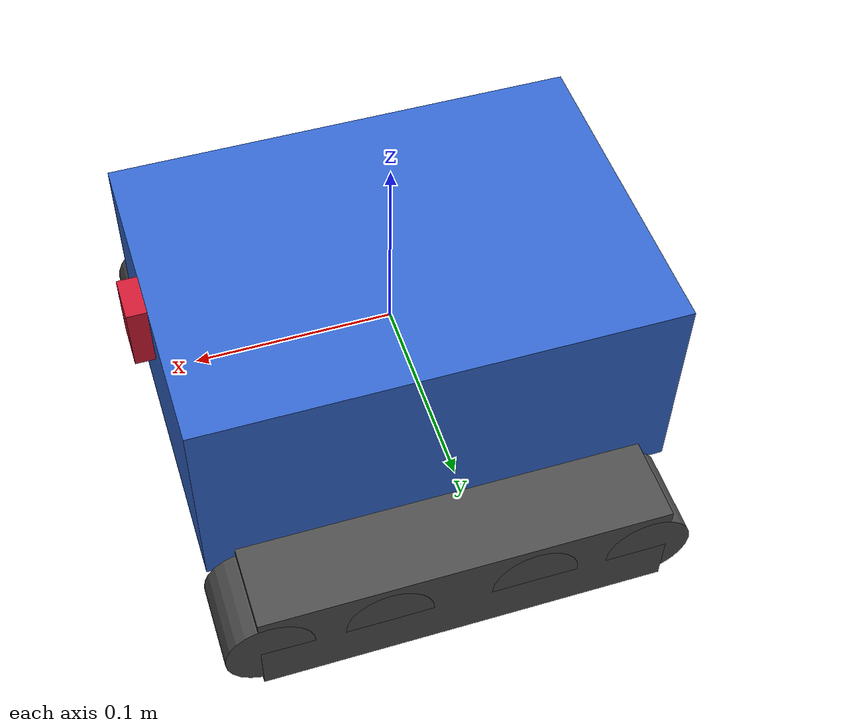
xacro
<?xml version="1.0"?>
<robot xmlns:xacro="http://www.ros.org/wiki/xacro" name="telega">

  <!-- ==================== Properties ==================== -->
  <!-- Размеры корпуса робота (в метрах) -->
  <xacro:property name="base_length" value="0.24"/>       <!-- Длина корпуса по оси X (от переднего до заднего края), м -->
  <xacro:property name="base_width" value="0.17"/>        <!-- Ширина корпуса по оси Y (от левого до правого борта), м -->
  <xacro:property name="base_height" value="0.11"/>       <!-- Высота корпуса по оси Z (от верха до низа), м -->

  <!-- Параметры гусеницы (в метрах) -->
  <xacro:property name="track_radius" value="0.0225"/>     <!-- Радиус катков и ведущего колеса, м -->
  <xacro:property name="track_width" value="0.044"/>     <!-- Ширина гусеничной ленты, м -->
  <xacro:property name="track_length" value="0.21"/>      <!-- Длина гусеницы (зона контакта с землёй), м -->

  <!-- Массы компонентов (в кг) -->
  <xacro:property name="base_mass" value="1.067"/>         <!-- Масса корпуса, кг -->
  <xacro:property name="track_mass" value="0.030"/>        <!-- Масса одной гусеницы (лента), кг -->
  <xacro:property name="roller_mass" value="0.012"/>       <!-- Масса одного катка, кг -->

  <!-- Расстояние от центра катков до низа корпуса, м -->
  <xacro:property name="roller_to_base_gap" value="0.014"/>
  <!-- ==================== Macros ==================== -->
  <!-- Макрос: отдельный каток (визуал + коллизия + инерция) -->
  <xacro:macro name="roller_link" params="name">
    <link name="${name}">
      <visual>
        <origin rpy="1.57075 0 0" xyz="0 0 0"/>       <!-- Поворот на 90° вокруг X, чтобы цилиндр лежал горизонтально -->
        <geometry>
          <cylinder length="${track_width}" radius="${track_radius}"/>
        </geometry>
        <material name="dark_gray"/>
      </visual>
      <collision>
        <origin rpy="1.57075 0 0" xyz="0 0 0"/>
        <geometry>
          <cylinder length="${track_width}" radius="${track_radius}"/>
        </geometry>
      </collision>
      <inertial>
        <mass value="${roller_mass}"/>                  <!-- Масса одного катка -->
        <!-- Моменты инерции катка (упрощённо) -->
        <inertia ixx="0.0005" ixy="0.0" ixz="0.0" iyy="0.0005" iyz="0.0" izz="0.0005"/>
      </inertial>
    </link>
  </xacro:macro>

  <!-- Макрос: сустав для катка (непрерывное вращение) -->
  <xacro:macro name="roller_joint" params="name parent x y z">
    <joint name="${name}_joint" type="continuous">    <!-- continuous = каток может вращаться бесконечно -->
      <parent link="${parent}"/>
      <child link="${name}"/>
      <origin rpy="0 0 0" xyz="${x} ${y} ${z}"/>     <!-- Позиция катка относительно родительского link -->
      <axis xyz="0 1 0"/>                              <!-- Ось вращения — по оси Y -->
    </joint>
  </xacro:macro>

  <!-- Макрос: полная сборка гусеницы (левая или правая) -->
  <xacro:macro name="track_assembly" params="side y_offset">
    <!-- side   = "left" или "right" (какая гусеница) -->
    <!-- y_offset = смещение по оси Y (расстояние от центра корпуса до центра гусеницы) -->

    <!-- Гусеничная лента (визуальный прямоугольник, имитирует резиновое полотно) -->
    <link name="${side}_track">
      <visual>
        <origin xyz="0 0 0" rpy="0 0 0"/>
        <geometry>
          <box size="${track_length} ${track_width} ${track_radius * 2 + 0.01}"/>  <!-- длина × ширина × высота -->
        </geometry>
        <material name="dark_gray"/>
      </visual>
      <collision>
        <origin xyz="0 0 0" rpy="0 0 0"/>
        <geometry>
          <box size="${track_length} ${track_width} ${track_radius * 2 + 0.01}"/>
        </geometry>
      </collision>
      <inertial>
        <mass value="${track_mass}"/>                   <!-- Масса гусеничной ленты -->
        <inertia ixx="0.01" ixy="0.0" ixz="0.0" iyy="0.01" iyz="0.0" izz="0.01"/>
      </inertial>
    </link>

    <!-- Фиксированный сустав: приклеивает гусеничную ленту к корпусу -->
    <joint name="${side}_track_joint" type="fixed">
      <parent link="base_link"/>
      <child link="${side}_track"/>
      <origin xyz="0 ${y_offset} ${-base_height/2 - roller_to_base_gap}" rpy="0 0 0"/>  <!-- Гусеничная лента на уровне центров катков -->
    </joint>

    <!-- ===== Колёса и катки гусеницы ===== -->

    <!-- Ведущее колесо (заднее) — крутит гусеницу -->
    <xacro:roller_link name="${side}_drive_wheel"/>
    <xacro:roller_joint name="${side}_drive_wheel" parent="base_link"
                        x="-0.095" y="${y_offset}" z="${-base_height/2 - roller_to_base_gap}"/>

    <!-- Поддерживающий каток #1 (передний) -->
    <xacro:roller_link name="${side}_support_roller_1"/>
    <xacro:roller_joint name="${side}_support_roller_1" parent="base_link"
                        x="0.1" y="${y_offset}" z="${-base_height/2 - roller_to_base_gap}"/>

    <!-- Поддерживающий каток #2 (центральный) -->
    <xacro:roller_link name="${side}_support_roller_2"/>
    <xacro:roller_joint name="${side}_support_roller_2" parent="base_link"
                        x="0.04" y="${y_offset}" z="${-base_height/2 - roller_to_base_gap}"/>

    <!-- Поддерживающий каток #3 (между центром и ведущим) -->
    <xacro:roller_link name="${side}_support_roller_3"/>
    <xacro:roller_joint name="${side}_support_roller_3" parent="base_link"
                        x="-0.035" y="${y_offset}" z="${-base_height/2 - roller_to_base_gap}"/>
  </xacro:macro>

  <!-- ==================== Materials ==================== -->
  <!-- Цвета для визуализации в RViz (R, G, B, Alpha — от 0.0 до 1.0) -->
  <material name="blue">
    <color rgba="0.2 0.4 0.8 1.0"/>                    <!-- Синий цвет для корпуса -->
  </material>
  <material name="dark_gray">
    <color rgba="0.3 0.3 0.3 1.0"/>                    <!-- Тёмно-серый для гусениц и катков -->
  </material>

  <!-- ==================== Base Link ==================== -->
  <!-- Основной корпус робота (прямоугольный параллелепипед) -->
  <link name="base_link">
    <visual>
      <geometry>
        <box size="${base_length} ${base_width} ${base_height}"/>  <!-- Длина × Ширина × Высота -->
      </geometry>
      <material name="blue"/>
    </visual>
    <collision>
      <geometry>
        <box size="${base_length} ${base_width} ${base_height}"/>  <!-- Границы для обнаружения столкновений -->
      </geometry>
    </collision>
    <inertial>
      <mass value="${base_mass}"/>                       <!-- Масса корпуса, кг -->
      <!-- Моменты инерции корпуса (упрощённо, для прямоугольника) -->
      <inertia ixx="0.05" ixy="0.0" ixz="0.0" iyy="0.05" iyz="0.0" izz="0.05"/>
    </inertial>
  </link>

  <!-- ==================== Tracks ==================== -->
  <!-- Установка двух гусениц: левая и правая -->
  <!-- Левая гусеница: смещена вправо от центра (base_width/2) на половину ширины гусеницы -->
  <xacro:track_assembly side="left" y_offset="${base_width/2 + track_width/2}"/>

  <!-- Правая гусеница: смещена влево от центра (-base_width/2) на половину ширины гусеницы -->
  <xacro:track_assembly side="right" y_offset="${-base_width/2 - track_width/2}"/>

  <!-- ==================== MaixSense A010 ToF Camera ==================== -->
  <!-- Свойства камеры -->
  <xacro:property name="tof_length" value="0.01"/>       <!-- Глубина (X), м (10 мм) -->
  <xacro:property name="tof_width" value="0.034"/>       <!-- Ширина (Y), м (34 мм) -->
  <xacro:property name="tof_height" value="0.023"/>      <!-- Высота (Z), м (23 мм) -->
  <xacro:property name="tof_mass" value="0.010"/>        <!-- Масса 10 г -->

  <!-- Гармоничный цвет для корпуса камеры (малиновый/черри) -->
  <material name="crimson">
    <color rgba="0.8 0.1 0.2 1.0"/>
  </material>

  <!-- Физический корпус камеры -->
  <link name="tof_link">
    <visual>
      <origin xyz="0 0 0" rpy="0 0 0"/>
      <geometry>
        <box size="${tof_length} ${tof_width} ${tof_height}"/>
      </geometry>
      <material name="crimson"/>
    </visual>
    <collision>
      <origin xyz="0 0 0" rpy="0 0 0"/>
      <geometry>
        <box size="${tof_length} ${tof_width} ${tof_height}"/>
      </geometry>
    </collision>
    <inertial>
      <mass value="${tof_mass}"/>
      <inertia ixx="0.000001" ixy="0.0" ixz="0.0" iyy="0.000001" iyz="0.0" izz="0.000001"/>
    </inertial>
  </link>

  <!-- Крепление камеры на переднем торце корпуса, по центру по Y и приподнято по Z (повернуто боком на 90 градусов по X) -->
  <joint name="tof_joint" type="fixed">
    <parent link="base_link"/>
    <child link="tof_link"/>
    <origin xyz="${base_length/2 + tof_length/2} 0 0.04" rpy="1.57079632679 0 0"/>
  </joint>

  <!-- Оптический кадр (frame_id для топиков ROS 2 depth и cloud) -->
  <link name="tof"/>

  <!-- Переход от стандартных координат робота к оптическим координатам камеры -->
  <!-- Привязан напрямую к base_link для сохранения стандартной (неповернутой) ориентации данных -->
  <joint name="tof_optical_joint" type="fixed">
    <parent link="base_link"/>
    <child link="tof"/>
    <origin xyz="${base_length/2 + tof_length/2} 0 0.04" rpy="-1.57079632679 0 -1.57079632679"/>
  </joint>

</robot>
